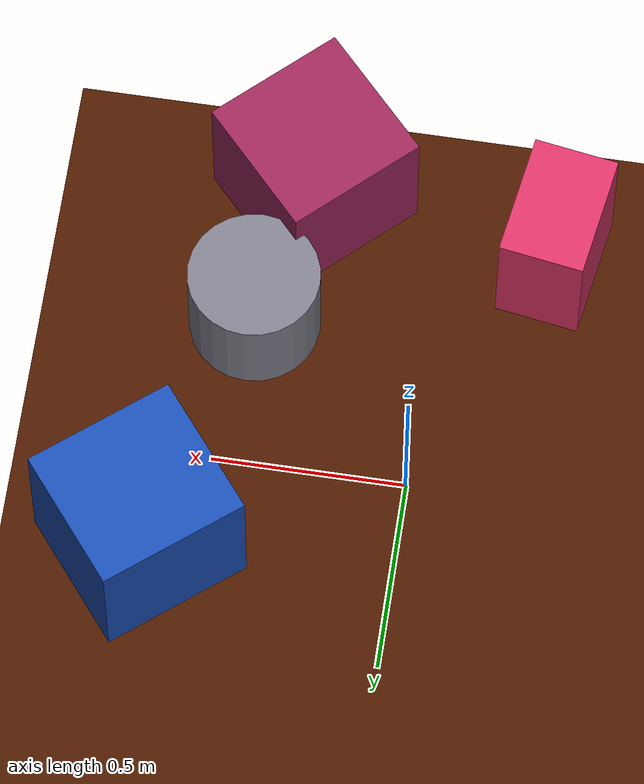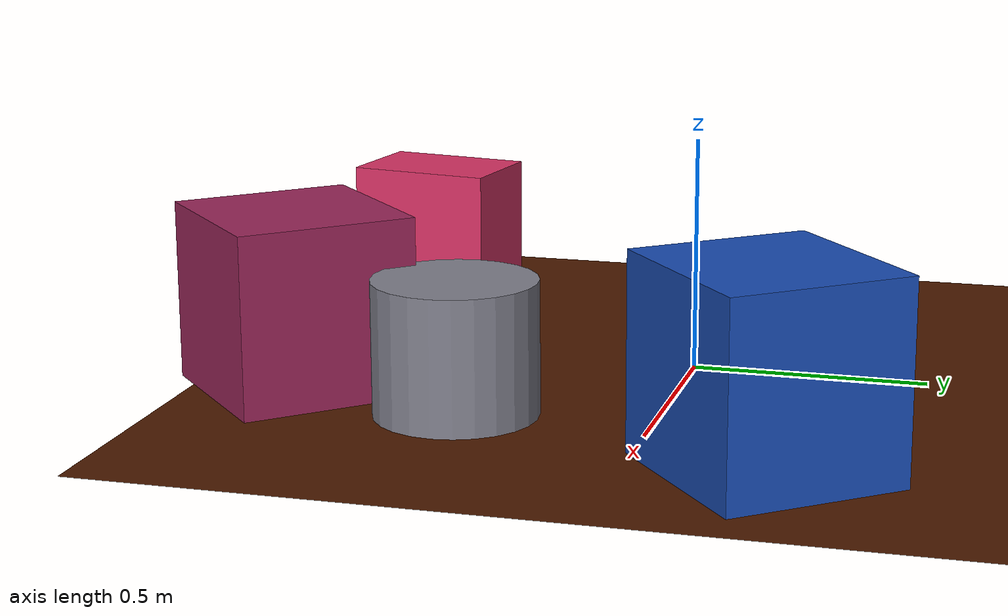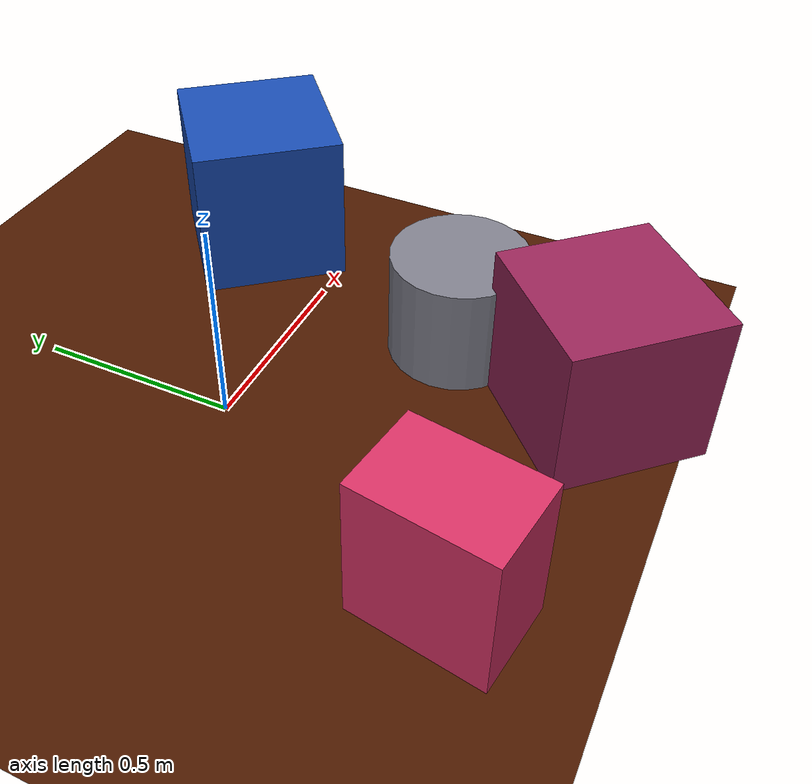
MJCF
<mujoco>
   <asset>
<texture type="skybox" builtin="gradient" rgb1="0.4 0.7 0.7" rgb2="0.8 1.0 0.5" width="256" height="256"/>
<texture name="gradient_0" builtin="gradient" rgb1="0.3 0.8 0.7" rgb2="0.7 0.2 0.4" width="200" height="200"/>
<texture name="flat_1" builtin="flat" rgb1="0.1 0.3 0.7" rgb2="0.1 0.3 0.7"  width="200" height="200"/>
<texture name="gradient_2" builtin="gradient" rgb1="1.0 0.1 0.3" rgb2="0.7 0.3 0.5" width="200" height="200"/>
<texture name="checker_3" builtin="checker" rgb1="0.3 0.1 0.5" rgb2="0.9 0.2 0.2" width="200" height="200"/><material name="gradient_0_mat" reflectance="0" texture="gradient_0" texuniform="true"/>
<material name="flat_1_mat" reflectance="0" texture="flat_1" texuniform="true"/>
<material name="gradient_2_mat" reflectance="0" texture="gradient_2" texuniform="true"/>
<material name="checker_3_mat" reflectance="0" texrepeat="10 10" texture="checker_3" texuniform="false" />
   </asset>

   <worldbody>
      <light diffuse=".9 .9 .9" pos="0 0 3" dir="0 0 -1"/>
     <geom type="plane" size="1 1 0.1" rgba="0.3 0.1 0.0 1"/>
<geom type="cylinder" pos="0.45 -0.4 0.14" size="0.17 0.14 0.14" material="gradient_0_mat" euler="0 0 30" />
<geom type="box" pos="0.64 0.26 0.2" size="0.2 0.19 0.2" material="flat_1_mat" euler="0 0 39" />
<geom type="box" pos="-0.29 -0.67 0.18" size="0.16 0.11 0.18" material="gradient_2_mat" euler="0 0 81" />
<geom type="box" pos="0.35 -0.78 0.19" size="0.19 0.19 0.19" material="checker_3_mat" euler="0 0 43" /><camera euler="60 0 180" fovy="60" name="camera1" pos="-0.2 -1.5 1"></camera>   </worldbody>
</mujoco>
